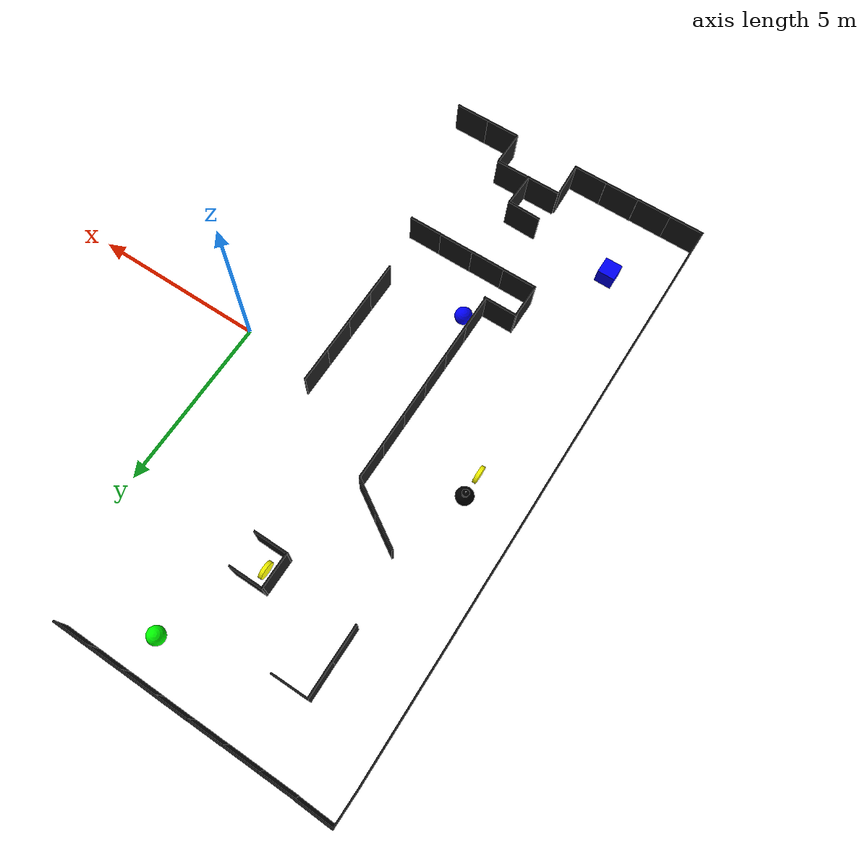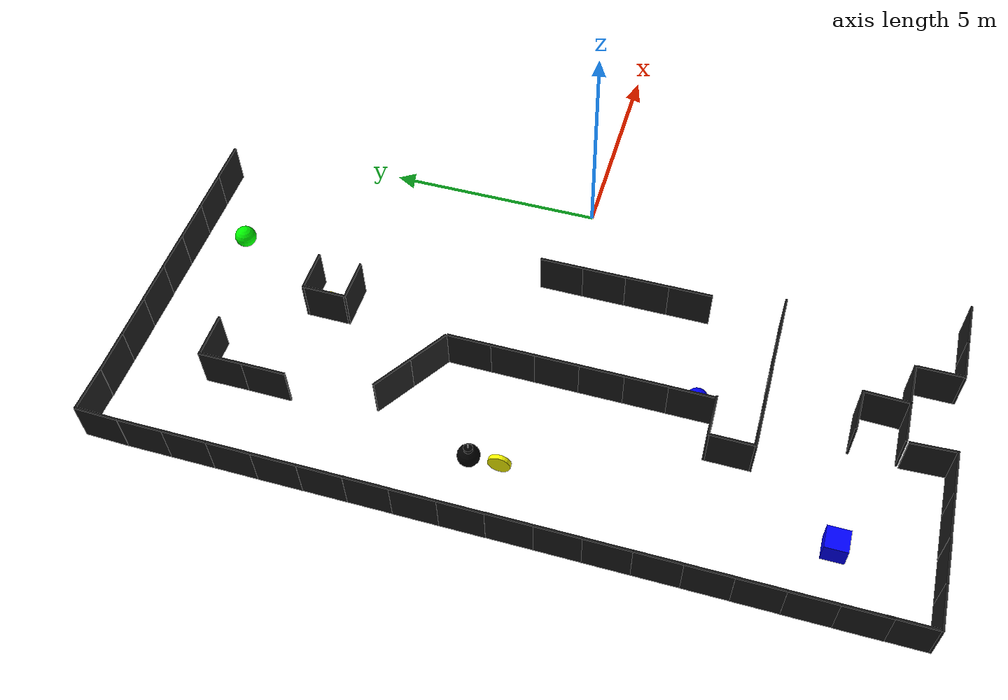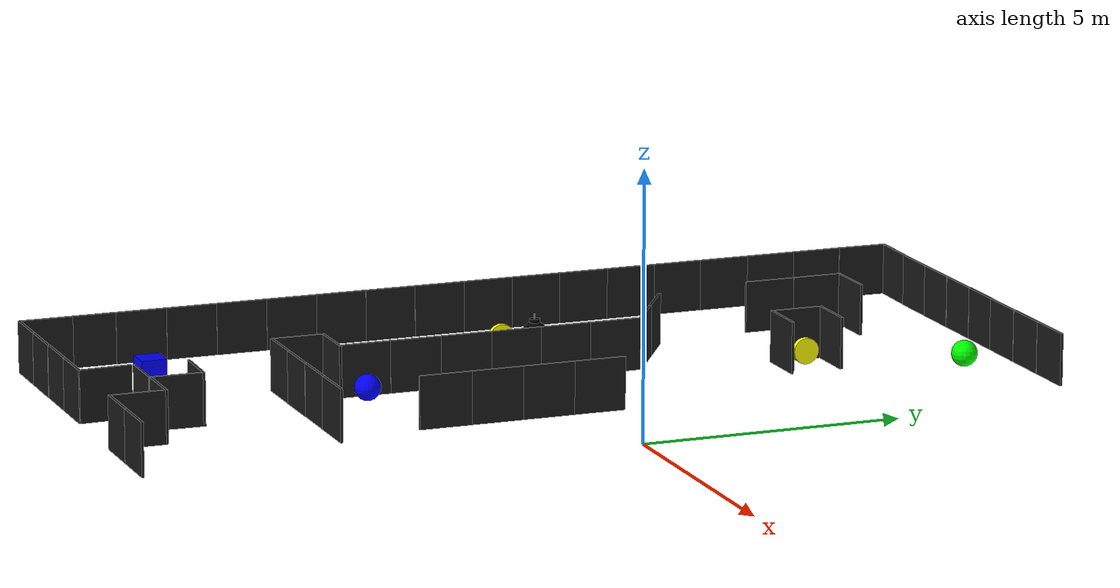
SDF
<sdf version="1.6">
 <world name="default">
  <model name="cube_blue">
   <static>1</static>
   <link name="chassis">
    <pose>0 0 0.25 0 -0 0</pose>
    <collision name="collision"><geometry><box><size>0.5 0.5 0.5</size></box></geometry></collision>
    <visual name="visual">
     <geometry><box><size>0.5 0.5 0.5</size></box></geometry>
     <material>
      <ambient>0 0 1 1</ambient>
      <diffuse>0 0 1 1</diffuse>
      <specular>0.1 0.1 0.1 1</specular>
      <emissive>0 0 0 0</emissive>
     </material>
    </visual>
   </link>
   <pose>-7.32238 -6.88227 0 0 -0 0</pose>
  </model>
  <model name="sphere_blue">
   <static>1</static>
   <link name="chassis">
    <pose>0 0 0.25 0 -0 0</pose>
    <collision name="collision"><geometry><sphere><radius>0.25</radius></sphere></geometry></collision>
    <visual name="visual">
     <geometry><sphere><radius>0.25</radius></sphere></geometry>
     <material>
      <ambient>0 0 1 1</ambient>
      <diffuse>0 0 1 1</diffuse>
      <specular>0.1 0.1 0.1 1</specular>
      <emissive>0 0 0 0</emissive>
     </material>
    </visual>
   </link>
   <pose>-4.67163 -3.53999 0 0 -0 0</pose>
  </model>
  <model name="sphere_green">
   <static>1</static>
   <link name="chassis">
    <pose>0 0 0.25 0 -0 0</pose>
    <collision name="collision"><geometry><sphere><radius>0.25</radius></sphere></geometry></collision>
    <visual name="visual">
     <geometry><sphere><radius>0.25</radius></sphere></geometry>
     <material>
      <ambient>0 1 0 1</ambient>
      <diffuse>0 1 0 1</diffuse>
      <specular>0.1 0.1 0.1 1</specular>
      <emissive>0 0 0 0</emissive>
     </material>
    </visual>
   </link>
   <pose>-3.05169 7.76717 0 0 -0 0</pose>
  </model>
  <model name="barrier_1">
   <static>1</static>
   <link name="chassis">
    <pose>0 0 0.5 0 -0 0</pose>
    <collision name="collision"><geometry><box><size>1 0.05 1</size></box></geometry></collision>
    <visual name="visual">
     <geometry><box><size>1 0.05 1</size></box></geometry>
     <material>
      <ambient>0.1 0.1 0.1 1</ambient>
      <diffuse>0.1 0.1 0.1 1</diffuse>
      <specular>0.1 0.1 0.1 1</specular>
      <emissive>0 0 0 0</emissive>
     </material>
    </visual>
   </link>
   <pose>-4.49325 -4.95734 0 0 -0 0</pose>
  </model>
  <model name="coin">
   <static>1</static>
   <link name="chassis">
    <pose>0 0 0.25 0 -0 0</pose>
    <visual name="visual">
     <pose>0 0 0 0 1.57 0</pose>
     <geometry><cylinder><radius>0.25</radius><length>0.1</length></cylinder></geometry>
     <material>
      <ambient>1 1 0 1</ambient>
      <diffuse>1 1 0 1</diffuse>
      <specular>0.1 0.1 0.1 1</specular>
      <emissive>0 0 0 0</emissive>
     </material>
    </visual>
   </link>
   <pose>-4.29923 5.05802 0 0 -0 0</pose>
  </model>
  <model name="bomb">
   <static>1</static>
   <link name="chassis">
    <pose>0 0 0.25 0 -0 0</pose>
    <visual name="visual">
     <pose>0 0 0.2 0 -0 0</pose>
     <geometry><cylinder><radius>0.1</radius><length>0.2</length></cylinder></geometry>
     <material>
      <ambient>0 0 0 1</ambient>
      <diffuse>0 0 0 1</diffuse>
      <specular>0.1 0.1 0.1 1</specular>
      <emissive>0 0 0 0</emissive>
     </material>
    </visual>
    <visual name="visual2">
     <geometry><sphere><radius>0.25</radius></sphere></geometry>
     <material>
      <ambient>0 0 0 1</ambient>
      <diffuse>0 0 0 1</diffuse>
      <specular>0.1 0.1 0.1 1</specular>
      <emissive>0 0 0 0</emissive>
     </material>
    </visual>
    <visual name="visual3">
     <pose>0 0 0.3 0 -0 0</pose>
     <geometry><cylinder><radius>0.01</radius><length>0.2</length></cylinder></geometry>
     <material>
      <ambient>1 1 1 1</ambient>
      <diffuse>1 1 1 1</diffuse>
      <specular>0.1 0.1 0.1 1</specular>
      <emissive>0 0 0 0</emissive>
     </material>
    </visual>
   </link>
   <pose>-7.36891 0.771698 0 0 -0 0</pose>
  </model>
  <model name="barrier_1_0">
   <static>1</static>
   <link name="chassis">
    <pose>0 0 0.5 0 -0 0</pose>
    <collision name="collision"><geometry><box><size>1 0.05 1</size></box></geometry></collision>
    <visual name="visual">
     <geometry><box><size>1 0.05 1</size></box></geometry>
     <material>
      <ambient>0.1 0.1 0.1 1</ambient>
      <diffuse>0.1 0.1 0.1 1</diffuse>
      <specular>0.1 0.1 0.1 1</specular>
      <emissive>0 0 0 0</emissive>
     </material>
    </visual>
   </link>
   <pose>-8.94669 -7.56184 0 0 0 -1.56862</pose>
  </model>
  <model name="barrier_2_0">
   <static>1</static>
   <link name="chassis">
    <pose>0 0 0.5 0 -0 0</pose>
    <collision name="collision"><geometry><box><size>1 0.05 1</size></box></geometry></collision>
    <visual name="visual">
     <geometry><box><size>1 0.05 1</size></box></geometry>
     <material>
      <ambient>0.1 0.1 0.1 1</ambient>
      <diffuse>0.1 0.1 0.1 1</diffuse>
      <specular>0.1 0.1 0.1 1</specular>
      <emissive>0 0 0 0</emissive>
     </material>
    </visual>
    <collision name="collision2">
     <pose>-0.475 0.525 0 0 -0 1.57</pose>
     <geometry><box><size>1 0.05 1</size></box></geometry>
    </collision>
    <visual name="visual2">
     <pose>-0.475 0.525 0 0 -0 1.57</pose>
     <geometry><box><size>1 0.05 1</size></box></geometry>
     <material>
      <ambient>0.1 0.1 0.1 1</ambient>
      <diffuse>0.1 0.1 0.1 1</diffuse>
      <specular>0.1 0.1 0.1 1</specular>
      <emissive>0 0 0 0</emissive>
     </material>
    </visual>
   </link>
   <pose>-8.96223 8.34033 0 0 0 -1.59066</pose>
  </model>
  <model name="barrier_1_0_clone">
   <static>1</static>
   <link name="chassis">
    <pose>0 0 0.5 0 -0 0</pose>
    <collision name="collision"><geometry><box><size>1 0.05 1</size></box></geometry></collision>
    <visual name="visual">
     <geometry><box><size>1 0.05 1</size></box></geometry>
     <material>
      <ambient>0.1 0.1 0.1 1</ambient>
      <diffuse>0.1 0.1 0.1 1</diffuse>
      <specular>0.1 0.1 0.1 1</specular>
      <emissive>0 0 0 0</emissive>
     </material>
    </visual>
   </link>
   <pose>-8.94675 -6.56146 0 0 0 -1.56862</pose>
  </model>
  <model name="barrier_1_0_clone_0">
   <static>1</static>
   <link name="chassis">
    <pose>0 0 0.5 0 -0 0</pose>
    <collision name="collision"><geometry><box><size>1 0.05 1</size></box></geometry></collision>
    <visual name="visual">
     <geometry><box><size>1 0.05 1</size></box></geometry>
     <material>
      <ambient>0.1 0.1 0.1 1</ambient>
      <diffuse>0.1 0.1 0.1 1</diffuse>
      <specular>0.1 0.1 0.1 1</specular>
      <emissive>0 0 0 0</emissive>
     </material>
    </visual>
   </link>
   <pose>-8.94468 -5.56949 0 0 0 -1.56862</pose>
  </model>
  <model name="barrier_1_0_clone_1">
   <static>1</static>
   <link name="chassis">
    <pose>0 0 0.5 0 -0 0</pose>
    <collision name="collision"><geometry><box><size>1 0.05 1</size></box></geometry></collision>
    <visual name="visual">
     <geometry><box><size>1 0.05 1</size></box></geometry>
     <material>
      <ambient>0.1 0.1 0.1 1</ambient>
      <diffuse>0.1 0.1 0.1 1</diffuse>
      <specular>0.1 0.1 0.1 1</specular>
      <emissive>0 0 0 0</emissive>
     </material>
    </visual>
   </link>
   <pose>-8.94412 -4.57946 0 0 0 -1.56862</pose>
  </model>
  <model name="barrier_1_0_clone_2">
   <static>1</static>
   <link name="chassis">
    <pose>0 0 0.5 0 -0 0</pose>
    <collision name="collision"><geometry><box><size>1 0.05 1</size></box></geometry></collision>
    <visual name="visual">
     <geometry><box><size>1 0.05 1</size></box></geometry>
     <material>
      <ambient>0.1 0.1 0.1 1</ambient>
      <diffuse>0.1 0.1 0.1 1</diffuse>
      <specular>0.1 0.1 0.1 1</specular>
      <emissive>0 0 0 0</emissive>
     </material>
    </visual>
   </link>
   <pose>-8.94437 -3.58389 0 0 0 -1.56862</pose>
  </model>
  <model name="barrier_1_0_clone_3">
   <static>1</static>
   <link name="chassis">
    <pose>0 0 0.5 0 -0 0</pose>
    <collision name="collision"><geometry><box><size>1 0.05 1</size></box></geometry></collision>
    <visual name="visual">
     <geometry><box><size>1 0.05 1</size></box></geometry>
     <material>
      <ambient>0.1 0.1 0.1 1</ambient>
      <diffuse>0.1 0.1 0.1 1</diffuse>
      <specular>0.1 0.1 0.1 1</specular>
      <emissive>0 0 0 0</emissive>
     </material>
    </visual>
   </link>
   <pose>-8.94691 -2.58345 0 0 0 -1.56862</pose>
  </model>
  <model name="barrier_1_0_clone_4">
   <static>1</static>
   <link name="chassis">
    <pose>0 0 0.5 0 -0 0</pose>
    <collision name="collision"><geometry><box><size>1 0.05 1</size></box></geometry></collision>
    <visual name="visual">
     <geometry><box><size>1 0.05 1</size></box></geometry>
     <material>
      <ambient>0.1 0.1 0.1 1</ambient>
      <diffuse>0.1 0.1 0.1 1</diffuse>
      <specular>0.1 0.1 0.1 1</specular>
      <emissive>0 0 0 0</emissive>
     </material>
    </visual>
   </link>
   <pose>-8.94686 -1.591 0 0 0 -1.56862</pose>
  </model>
  <model name="barrier_1_0_clone_5">
   <static>1</static>
   <link name="chassis">
    <pose>0 0 0.5 0 -0 0</pose>
    <collision name="collision"><geometry><box><size>1 0.05 1</size></box></geometry></collision>
    <visual name="visual">
     <geometry><box><size>1 0.05 1</size></box></geometry>
     <material>
      <ambient>0.1 0.1 0.1 1</ambient>
      <diffuse>0.1 0.1 0.1 1</diffuse>
      <specular>0.1 0.1 0.1 1</specular>
      <emissive>0 0 0 0</emissive>
     </material>
    </visual>
   </link>
   <pose>-8.94828 -0.589978 0 0 0 -1.56862</pose>
  </model>
  <model name="barrier_1_0_clone_6">
   <static>1</static>
   <link name="chassis">
    <pose>0 0 0.5 0 -0 0</pose>
    <collision name="collision"><geometry><box><size>1 0.05 1</size></box></geometry></collision>
    <visual name="visual">
     <geometry><box><size>1 0.05 1</size></box></geometry>
     <material>
      <ambient>0.1 0.1 0.1 1</ambient>
      <diffuse>0.1 0.1 0.1 1</diffuse>
      <specular>0.1 0.1 0.1 1</specular>
      <emissive>0 0 0 0</emissive>
     </material>
    </visual>
   </link>
   <pose>-8.95339 0.409164 0 0 0 -1.56862</pose>
  </model>
  <model name="barrier_1_0_clone_7">
   <static>1</static>
   <link name="chassis">
    <pose>0 0 0.5 0 -0 0</pose>
    <collision name="collision"><geometry><box><size>1 0.05 1</size></box></geometry></collision>
    <visual name="visual">
     <geometry><box><size>1 0.05 1</size></box></geometry>
     <material>
      <ambient>0.1 0.1 0.1 1</ambient>
      <diffuse>0.1 0.1 0.1 1</diffuse>
      <specular>0.1 0.1 0.1 1</specular>
      <emissive>0 0 0 0</emissive>
     </material>
    </visual>
   </link>
   <pose>-8.95581 1.39827 0 0 0 -1.56862</pose>
  </model>
  <model name="barrier_1_0_clone_8">
   <static>1</static>
   <link name="chassis">
    <pose>0 0 0.5 0 -0 0</pose>
    <collision name="collision"><geometry><box><size>1 0.05 1</size></box></geometry></collision>
    <visual name="visual">
     <geometry><box><size>1 0.05 1</size></box></geometry>
     <material>
      <ambient>0.1 0.1 0.1 1</ambient>
      <diffuse>0.1 0.1 0.1 1</diffuse>
      <specular>0.1 0.1 0.1 1</specular>
      <emissive>0 0 0 0</emissive>
     </material>
    </visual>
   </link>
   <pose>-8.95548 2.3872 0 0 0 -1.56862</pose>
  </model>
  <model name="barrier_1_0_clone_9">
   <static>1</static>
   <link name="chassis">
    <pose>0 0 0.5 0 -0 0</pose>
    <collision name="collision"><geometry><box><size>1 0.05 1</size></box></geometry></collision>
    <visual name="visual">
     <geometry><box><size>1 0.05 1</size></box></geometry>
     <material>
      <ambient>0.1 0.1 0.1 1</ambient>
      <diffuse>0.1 0.1 0.1 1</diffuse>
      <specular>0.1 0.1 0.1 1</specular>
      <emissive>0 0 0 0</emissive>
     </material>
    </visual>
   </link>
   <pose>-8.95928 3.38028 0 0 0 -1.56862</pose>
  </model>
  <model name="barrier_1_0_clone_10">
   <static>1</static>
   <link name="chassis">
    <pose>0 0 0.5 0 -0 0</pose>
    <collision name="collision"><geometry><box><size>1 0.05 1</size></box></geometry></collision>
    <visual name="visual">
     <geometry><box><size>1 0.05 1</size></box></geometry>
     <material>
      <ambient>0.1 0.1 0.1 1</ambient>
      <diffuse>0.1 0.1 0.1 1</diffuse>
      <specular>0.1 0.1 0.1 1</specular>
      <emissive>0 0 0 0</emissive>
     </material>
    </visual>
   </link>
   <pose>-8.96389 4.36691 0 0 0 -1.56862</pose>
  </model>
  <model name="barrier_1_0_clone_11">
   <static>1</static>
   <link name="chassis">
    <pose>0 0 0.5 0 -0 0</pose>
    <collision name="collision"><geometry><box><size>1 0.05 1</size></box></geometry></collision>
    <visual name="visual">
     <geometry><box><size>1 0.05 1</size></box></geometry>
     <material>
      <ambient>0.1 0.1 0.1 1</ambient>
      <diffuse>0.1 0.1 0.1 1</diffuse>
      <specular>0.1 0.1 0.1 1</specular>
      <emissive>0 0 0 0</emissive>
     </material>
    </visual>
   </link>
   <pose>-8.96484 5.35736 0 0 0 -1.56862</pose>
  </model>
  <model name="barrier_1_0_clone_12">
   <static>1</static>
   <link name="chassis">
    <pose>0 0 0.5 0 -0 0</pose>
    <collision name="collision"><geometry><box><size>1 0.05 1</size></box></geometry></collision>
    <visual name="visual">
     <geometry><box><size>1 0.05 1</size></box></geometry>
     <material>
      <ambient>0.1 0.1 0.1 1</ambient>
      <diffuse>0.1 0.1 0.1 1</diffuse>
      <specular>0.1 0.1 0.1 1</specular>
      <emissive>0 0 0 0</emissive>
     </material>
    </visual>
   </link>
   <pose>-8.96737 6.34739 0 0 0 -1.56862</pose>
  </model>
  <model name="barrier_1_0_clone_13">
   <static>1</static>
   <link name="chassis">
    <pose>0 0 0.5 0 -0 0</pose>
    <collision name="collision"><geometry><box><size>1 0.05 1</size></box></geometry></collision>
    <visual name="visual">
     <geometry><box><size>1 0.05 1</size></box></geometry>
     <material>
      <ambient>0.1 0.1 0.1 1</ambient>
      <diffuse>0.1 0.1 0.1 1</diffuse>
      <specular>0.1 0.1 0.1 1</specular>
      <emissive>0 0 0 0</emissive>
     </material>
    </visual>
   </link>
   <pose>-8.96983 7.33788 0 0 0 -1.56862</pose>
  </model>
  <model name="barrier_1_18">
   <static>1</static>
   <link name="chassis">
    <pose>0 0 0.5 0 -0 0</pose>
    <collision name="collision"><geometry><box><size>1 0.05 1</size></box></geometry></collision>
    <visual name="visual">
     <geometry><box><size>1 0.05 1</size></box></geometry>
     <material>
      <ambient>0.1 0.1 0.1 1</ambient>
      <diffuse>0.1 0.1 0.1 1</diffuse>
      <specular>0.1 0.1 0.1 1</specular>
      <emissive>0 0 0 0</emissive>
     </material>
    </visual>
   </link>
   <pose>-7.43182 8.78835 0 0 -0 0</pose>
  </model>
  <model name="barrier_1_18_clone">
   <static>1</static>
   <link name="chassis">
    <pose>0 0 0.5 0 -0 0</pose>
    <collision name="collision"><geometry><box><size>1 0.05 1</size></box></geometry></collision>
    <visual name="visual">
     <geometry><box><size>1 0.05 1</size></box></geometry>
     <material>
      <ambient>0.1 0.1 0.1 1</ambient>
      <diffuse>0.1 0.1 0.1 1</diffuse>
      <specular>0.1 0.1 0.1 1</specular>
      <emissive>0 0 0 0</emissive>
     </material>
    </visual>
   </link>
   <pose>-6.45226 8.78729 0 0 -0 0</pose>
  </model>
  <model name="barrier_1_18_clone_0">
   <static>1</static>
   <link name="chassis">
    <pose>0 0 0.5 0 -0 0</pose>
    <collision name="collision"><geometry><box><size>1 0.05 1</size></box></geometry></collision>
    <visual name="visual">
     <geometry><box><size>1 0.05 1</size></box></geometry>
     <material>
      <ambient>0.1 0.1 0.1 1</ambient>
      <diffuse>0.1 0.1 0.1 1</diffuse>
      <specular>0.1 0.1 0.1 1</specular>
      <emissive>0 0 0 0</emissive>
     </material>
    </visual>
   </link>
   <pose>-5.46816 8.79079 0 0 -0 0</pose>
  </model>
  <model name="barrier_1_18_clone_1">
   <static>1</static>
   <link name="chassis">
    <pose>0 0 0.5 0 -0 0</pose>
    <collision name="collision"><geometry><box><size>1 0.05 1</size></box></geometry></collision>
    <visual name="visual">
     <geometry><box><size>1 0.05 1</size></box></geometry>
     <material>
      <ambient>0.1 0.1 0.1 1</ambient>
      <diffuse>0.1 0.1 0.1 1</diffuse>
      <specular>0.1 0.1 0.1 1</specular>
      <emissive>0 0 0 0</emissive>
     </material>
    </visual>
   </link>
   <pose>-4.50737 8.79381 0 0 -0 0</pose>
  </model>
  <model name="barrier_1_18_clone_2">
   <static>1</static>
   <link name="chassis">
    <pose>0 0 0.5 0 -0 0</pose>
    <collision name="collision"><geometry><box><size>1 0.05 1</size></box></geometry></collision>
    <visual name="visual">
     <geometry><box><size>1 0.05 1</size></box></geometry>
     <material>
      <ambient>0.1 0.1 0.1 1</ambient>
      <diffuse>0.1 0.1 0.1 1</diffuse>
      <specular>0.1 0.1 0.1 1</specular>
      <emissive>0 0 0 0</emissive>
     </material>
    </visual>
   </link>
   <pose>-3.53062 8.79201 0 0 -0 0</pose>
  </model>
  <model name="barrier_1_18_clone_3">
   <static>1</static>
   <link name="chassis">
    <pose>0 0 0.5 0 -0 0</pose>
    <collision name="collision"><geometry><box><size>1 0.05 1</size></box></geometry></collision>
    <visual name="visual">
     <geometry><box><size>1 0.05 1</size></box></geometry>
     <material>
      <ambient>0.1 0.1 0.1 1</ambient>
      <diffuse>0.1 0.1 0.1 1</diffuse>
      <specular>0.1 0.1 0.1 1</specular>
      <emissive>0 0 0 0</emissive>
     </material>
    </visual>
   </link>
   <pose>-2.54563 8.79444 0 0 -0 0</pose>
  </model>
  <model name="barrier_1_18_clone_4">
   <static>1</static>
   <link name="chassis">
    <pose>0 0 0.5 0 -0 0</pose>
    <collision name="collision"><geometry><box><size>1 0.05 1</size></box></geometry></collision>
    <visual name="visual">
     <geometry><box><size>1 0.05 1</size></box></geometry>
     <material>
      <ambient>0.1 0.1 0.1 1</ambient>
      <diffuse>0.1 0.1 0.1 1</diffuse>
      <specular>0.1 0.1 0.1 1</specular>
      <emissive>0 0 0 0</emissive>
     </material>
    </visual>
   </link>
   <pose>-1.55694 8.79631 0 0 -0 0</pose>
  </model>
  <model name="barrier_1_21_clone_7">
   <static>1</static>
   <link name="chassis">
    <pose>0 0 0.5 0 -0 0</pose>
    <collision name="collision"><geometry><box><size>1 0.05 1</size></box></geometry></collision>
    <visual name="visual">
     <geometry><box><size>1 0.05 1</size></box></geometry>
     <material>
      <ambient>0.1 0.1 0.1 1</ambient>
      <diffuse>0.1 0.1 0.1 1</diffuse>
      <specular>0.1 0.1 0.1 1</specular>
      <emissive>0 0 0 0</emissive>
     </material>
    </visual>
   </link>
   <pose>-1.59182 -8.92491 0 0 -0 0</pose>
  </model>
  <model name="barrier_1_21_clone_8">
   <static>1</static>
   <link name="chassis">
    <pose>0 0 0.5 0 -0 0</pose>
    <collision name="collision"><geometry><box><size>1 0.05 1</size></box></geometry></collision>
    <visual name="visual">
     <geometry><box><size>1 0.05 1</size></box></geometry>
     <material>
      <ambient>0.1 0.1 0.1 1</ambient>
      <diffuse>0.1 0.1 0.1 1</diffuse>
      <specular>0.1 0.1 0.1 1</specular>
      <emissive>0 0 0 0</emissive>
     </material>
    </visual>
   </link>
   <pose>-3.55058 -7.87618 0 0 -0 0</pose>
  </model>
  <model name="barrier_1_21_clone_9">
   <static>1</static>
   <link name="chassis">
    <pose>0 0 0.5 0 -0 0</pose>
    <collision name="collision"><geometry><box><size>1 0.05 1</size></box></geometry></collision>
    <visual name="visual">
     <geometry><box><size>1 0.05 1</size></box></geometry>
     <material>
      <ambient>0.1 0.1 0.1 1</ambient>
      <diffuse>0.1 0.1 0.1 1</diffuse>
      <specular>0.1 0.1 0.1 1</specular>
      <emissive>0 0 0 0</emissive>
     </material>
    </visual>
   </link>
   <pose>-4.51155 -7.88119 0 0 -0 0</pose>
  </model>
  <model name="barrier_1_21_clone_10">
   <static>1</static>
   <link name="chassis">
    <pose>0 0 0.5 0 -0 0</pose>
    <collision name="collision"><geometry><box><size>1 0.05 1</size></box></geometry></collision>
    <visual name="visual">
     <geometry><box><size>1 0.05 1</size></box></geometry>
     <material>
      <ambient>0.1 0.1 0.1 1</ambient>
      <diffuse>0.1 0.1 0.1 1</diffuse>
      <specular>0.1 0.1 0.1 1</specular>
      <emissive>0 0 0 0</emissive>
     </material>
    </visual>
   </link>
   <pose>-5.00714 -8.42807 0 0 -0 1.61395</pose>
  </model>
  <model name="barrier_1_21_clone_11">
   <static>1</static>
   <link name="chassis">
    <pose>0 0 0.5 0 -0 0</pose>
    <collision name="collision"><geometry><box><size>1 0.05 1</size></box></geometry></collision>
    <visual name="visual">
     <geometry><box><size>1 0.05 1</size></box></geometry>
     <material>
      <ambient>0.1 0.1 0.1 1</ambient>
      <diffuse>0.1 0.1 0.1 1</diffuse>
      <specular>0.1 0.1 0.1 1</specular>
      <emissive>0 0 0 0</emissive>
     </material>
    </visual>
   </link>
   <pose>-5.46256 -8.9219 0 0 -0 0</pose>
  </model>
  <model name="barrier_1_21_clone_12">
   <static>1</static>
   <link name="chassis">
    <pose>0 0 0.5 0 -0 0</pose>
    <collision name="collision"><geometry><box><size>1 0.05 1</size></box></geometry></collision>
    <visual name="visual">
     <geometry><box><size>1 0.05 1</size></box></geometry>
     <material>
      <ambient>0.1 0.1 0.1 1</ambient>
      <diffuse>0.1 0.1 0.1 1</diffuse>
      <specular>0.1 0.1 0.1 1</specular>
      <emissive>0 0 0 0</emissive>
     </material>
    </visual>
   </link>
   <pose>-6.46593 -8.92117 0 0 -0 0</pose>
  </model>
  <model name="barrier_1_21_clone_13">
   <static>1</static>
   <link name="chassis">
    <pose>0 0 0.5 0 -0 0</pose>
    <collision name="collision"><geometry><box><size>1 0.05 1</size></box></geometry></collision>
    <visual name="visual">
     <geometry><box><size>1 0.05 1</size></box></geometry>
     <material>
      <ambient>0.1 0.1 0.1 1</ambient>
      <diffuse>0.1 0.1 0.1 1</diffuse>
      <specular>0.1 0.1 0.1 1</specular>
      <emissive>0 0 0 0</emissive>
     </material>
    </visual>
   </link>
   <pose>-7.46706 -8.92746 0 0 -0 0</pose>
  </model>
  <model name="barrier_2_6">
   <static>1</static>
   <link name="chassis">
    <pose>0 0 0.5 0 -0 0</pose>
    <collision name="collision"><geometry><box><size>1 0.05 1</size></box></geometry></collision>
    <visual name="visual">
     <geometry><box><size>1 0.05 1</size></box></geometry>
     <material>
      <ambient>0.1 0.1 0.1 1</ambient>
      <diffuse>0.1 0.1 0.1 1</diffuse>
      <specular>0.1 0.1 0.1 1</specular>
      <emissive>0 0 0 0</emissive>
     </material>
    </visual>
    <collision name="collision2">
     <pose>-0.475 0.525 0 0 -0 1.57</pose>
     <geometry><box><size>1 0.05 1</size></box></geometry>
    </collision>
    <visual name="visual2">
     <pose>-0.475 0.525 0 0 -0 1.57</pose>
     <geometry><box><size>1 0.05 1</size></box></geometry>
     <material>
      <ambient>0.1 0.1 0.1 1</ambient>
      <diffuse>0.1 0.1 0.1 1</diffuse>
      <specular>0.1 0.1 0.1 1</specular>
      <emissive>0 0 0 0</emissive>
     </material>
    </visual>
   </link>
   <pose>-8.46687 -8.92868 0 0 -0 0</pose>
  </model>
  <model name="barrier_2_7">
   <static>1</static>
   <link name="chassis">
    <pose>0 0 0.5 0 -0 0</pose>
    <collision name="collision"><geometry><box><size>1 0.05 1</size></box></geometry></collision>
    <visual name="visual">
     <geometry><box><size>1 0.05 1</size></box></geometry>
     <material>
      <ambient>0.1 0.1 0.1 1</ambient>
      <diffuse>0.1 0.1 0.1 1</diffuse>
      <specular>0.1 0.1 0.1 1</specular>
      <emissive>0 0 0 0</emissive>
     </material>
    </visual>
    <collision name="collision2">
     <pose>-0.475 0.525 0 0 -0 1.57</pose>
     <geometry><box><size>1 0.05 1</size></box></geometry>
    </collision>
    <visual name="visual2">
     <pose>-0.475 0.525 0 0 -0 1.57</pose>
     <geometry><box><size>1 0.05 1</size></box></geometry>
     <material>
      <ambient>0.1 0.1 0.1 1</ambient>
      <diffuse>0.1 0.1 0.1 1</diffuse>
      <specular>0.1 0.1 0.1 1</specular>
      <emissive>0 0 0 0</emissive>
     </material>
    </visual>
   </link>
   <pose>-2.5925 -8.92494 0 0 -0 0</pose>
  </model>
  <model name="barrier_2_8">
   <static>1</static>
   <link name="chassis">
    <pose>0 0 0.5 0 -0 0</pose>
    <collision name="collision"><geometry><box><size>1 0.05 1</size></box></geometry></collision>
    <visual name="visual">
     <geometry><box><size>1 0.05 1</size></box></geometry>
     <material>
      <ambient>0.1 0.1 0.1 1</ambient>
      <diffuse>0.1 0.1 0.1 1</diffuse>
      <specular>0.1 0.1 0.1 1</specular>
      <emissive>0 0 0 0</emissive>
     </material>
    </visual>
    <collision name="collision2">
     <pose>-0.475 0.525 0 0 -0 1.57</pose>
     <geometry><box><size>1 0.05 1</size></box></geometry>
    </collision>
    <visual name="visual2">
     <pose>-0.475 0.525 0 0 -0 1.57</pose>
     <geometry><box><size>1 0.05 1</size></box></geometry>
     <material>
      <ambient>0.1 0.1 0.1 1</ambient>
      <diffuse>0.1 0.1 0.1 1</diffuse>
      <specular>0.1 0.1 0.1 1</specular>
      <emissive>0 0 0 0</emissive>
     </material>
    </visual>
   </link>
   <pose>-4.49582 -6.87089 0 0 -0 3.11565</pose>
  </model>
  <model name="barrier_3_0">
   <static>1</static>
   <link name="chassis">
    <pose>0 0 0.5 0 -0 0</pose>
    <collision name="collision"><geometry><box><size>1 0.05 1</size></box></geometry></collision>
    <visual name="visual">
     <geometry><box><size>1 0.05 1</size></box></geometry>
     <material>
      <ambient>0.1 0.1 0.1 1</ambient>
      <diffuse>0.1 0.1 0.1 1</diffuse>
      <specular>0.1 0.1 0.1 1</specular>
      <emissive>0 0 0 0</emissive>
     </material>
    </visual>
    <collision name="collision2">
     <pose>-0.475 0.525 0 0 -0 1.57</pose>
     <geometry><box><size>1 0.05 1</size></box></geometry>
    </collision>
    <visual name="visual2">
     <pose>-0.475 0.525 0 0 -0 1.57</pose>
     <geometry><box><size>1 0.05 1</size></box></geometry>
     <material>
      <ambient>0.1 0.1 0.1 1</ambient>
      <diffuse>0.1 0.1 0.1 1</diffuse>
      <specular>0.1 0.1 0.1 1</specular>
      <emissive>0 0 0 0</emissive>
     </material>
    </visual>
    <collision name="collision3">
     <pose>0 1 0 0 -0 0</pose>
     <geometry><box><size>1 0.05 1</size></box></geometry>
    </collision>
    <visual name="visual3">
     <pose>0 1 0 0 -0 0</pose>
     <geometry><box><size>1 0.05 1</size></box></geometry>
     <material>
      <ambient>0.1 0.1 0.1 1</ambient>
      <diffuse>0.1 0.1 0.1 1</diffuse>
      <specular>0.1 0.1 0.1 1</specular>
      <emissive>0 0 0 0</emissive>
     </material>
    </visual>
   </link>
   <pose>-5.48365 -4.95486 0 0 -0 0</pose>
  </model>
  <model name="barrier_1_22">
   <static>1</static>
   <link name="chassis">
    <pose>0 0 0.5 0 -0 0</pose>
    <collision name="collision"><geometry><box><size>1 0.05 1</size></box></geometry></collision>
    <visual name="visual">
     <geometry><box><size>1 0.05 1</size></box></geometry>
     <material>
      <ambient>0.1 0.1 0.1 1</ambient>
      <diffuse>0.1 0.1 0.1 1</diffuse>
      <specular>0.1 0.1 0.1 1</specular>
      <emissive>0 0 0 0</emissive>
     </material>
    </visual>
   </link>
   <pose>-3.49746 -4.95231 0 0 -0 0</pose>
  </model>
  <model name="barrier_1_23">
   <static>1</static>
   <link name="chassis">
    <pose>0 0 0.5 0 -0 0</pose>
    <collision name="collision"><geometry><box><size>1 0.05 1</size></box></geometry></collision>
    <visual name="visual">
     <geometry><box><size>1 0.05 1</size></box></geometry>
     <material>
      <ambient>0.1 0.1 0.1 1</ambient>
      <diffuse>0.1 0.1 0.1 1</diffuse>
      <specular>0.1 0.1 0.1 1</specular>
      <emissive>0 0 0 0</emissive>
     </material>
    </visual>
   </link>
   <pose>-2.52236 -4.95576 0 0 -0 0</pose>
  </model>
  <model name="barrier_1_24">
   <static>1</static>
   <link name="chassis">
    <pose>0 0 0.5 0 -0 0</pose>
    <collision name="collision"><geometry><box><size>1 0.05 1</size></box></geometry></collision>
    <visual name="visual">
     <geometry><box><size>1 0.05 1</size></box></geometry>
     <material>
      <ambient>0.1 0.1 0.1 1</ambient>
      <diffuse>0.1 0.1 0.1 1</diffuse>
      <specular>0.1 0.1 0.1 1</specular>
      <emissive>0 0 0 0</emissive>
     </material>
    </visual>
   </link>
   <pose>-5.03246 -3.43263 0 0 -0 1.57028</pose>
  </model>
  <model name="barrier_1_24_clone">
   <static>1</static>
   <link name="chassis">
    <pose>0 0 0.5 0 -0 0</pose>
    <collision name="collision"><geometry><box><size>1 0.05 1</size></box></geometry></collision>
    <visual name="visual">
     <geometry><box><size>1 0.05 1</size></box></geometry>
     <material>
      <ambient>0.1 0.1 0.1 1</ambient>
      <diffuse>0.1 0.1 0.1 1</diffuse>
      <specular>0.1 0.1 0.1 1</specular>
      <emissive>0 0 0 0</emissive>
     </material>
    </visual>
   </link>
   <pose>-5.03004 -2.47532 0 0 -0 1.57028</pose>
  </model>
  <model name="barrier_1_24_clone_0">
   <static>1</static>
   <link name="chassis">
    <pose>0 0 0.5 0 -0 0</pose>
    <collision name="collision"><geometry><box><size>1 0.05 1</size></box></geometry></collision>
    <visual name="visual">
     <geometry><box><size>1 0.05 1</size></box></geometry>
     <material>
      <ambient>0.1 0.1 0.1 1</ambient>
      <diffuse>0.1 0.1 0.1 1</diffuse>
      <specular>0.1 0.1 0.1 1</specular>
      <emissive>0 0 0 0</emissive>
     </material>
    </visual>
   </link>
   <pose>-5.0291 -1.48247 0 0 -0 1.57028</pose>
  </model>
  <model name="barrier_1_24_clone_1">
   <static>1</static>
   <link name="chassis">
    <pose>0 0 0.5 0 -0 0</pose>
    <collision name="collision"><geometry><box><size>1 0.05 1</size></box></geometry></collision>
    <visual name="visual">
     <geometry><box><size>1 0.05 1</size></box></geometry>
     <material>
      <ambient>0.1 0.1 0.1 1</ambient>
      <diffuse>0.1 0.1 0.1 1</diffuse>
      <specular>0.1 0.1 0.1 1</specular>
      <emissive>0 0 0 0</emissive>
     </material>
    </visual>
   </link>
   <pose>-5.02805 -0.486557 0 0 -0 1.57028</pose>
  </model>
  <model name="barrier_1_24_clone_2">
   <static>1</static>
   <link name="chassis">
    <pose>0 0 0.5 0 -0 0</pose>
    <collision name="collision"><geometry><box><size>1 0.05 1</size></box></geometry></collision>
    <visual name="visual">
     <geometry><box><size>1 0.05 1</size></box></geometry>
     <material>
      <ambient>0.1 0.1 0.1 1</ambient>
      <diffuse>0.1 0.1 0.1 1</diffuse>
      <specular>0.1 0.1 0.1 1</specular>
      <emissive>0 0 0 0</emissive>
     </material>
    </visual>
   </link>
   <pose>-5.02637 0.492407 0 0 -0 1.57028</pose>
  </model>
  <model name="barrier_1_24_clone_3">
   <static>1</static>
   <link name="chassis">
    <pose>0 0 0.5 0 -0 0</pose>
    <collision name="collision"><geometry><box><size>1 0.05 1</size></box></geometry></collision>
    <visual name="visual">
     <geometry><box><size>1 0.05 1</size></box></geometry>
     <material>
      <ambient>0.1 0.1 0.1 1</ambient>
      <diffuse>0.1 0.1 0.1 1</diffuse>
      <specular>0.1 0.1 0.1 1</specular>
      <emissive>0 0 0 0</emissive>
     </material>
    </visual>
   </link>
   <pose>-2.38458 -2.85956 0 0 -0 1.57028</pose>
  </model>
  <model name="barrier_1_24_clone_4">
   <static>1</static>
   <link name="chassis">
    <pose>0 0 0.5 0 -0 0</pose>
    <collision name="collision"><geometry><box><size>1 0.05 1</size></box></geometry></collision>
    <visual name="visual">
     <geometry><box><size>1 0.05 1</size></box></geometry>
     <material>
      <ambient>0.1 0.1 0.1 1</ambient>
      <diffuse>0.1 0.1 0.1 1</diffuse>
      <specular>0.1 0.1 0.1 1</specular>
      <emissive>0 0 0 0</emissive>
     </material>
    </visual>
   </link>
   <pose>-2.38627 -1.86824 0 0 -0 1.57028</pose>
  </model>
  <model name="barrier_1_24_clone_5">
   <static>1</static>
   <link name="chassis">
    <pose>0 0 0.5 0 -0 0</pose>
    <collision name="collision"><geometry><box><size>1 0.05 1</size></box></geometry></collision>
    <visual name="visual">
     <geometry><box><size>1 0.05 1</size></box></geometry>
     <material>
      <ambient>0.1 0.1 0.1 1</ambient>
      <diffuse>0.1 0.1 0.1 1</diffuse>
      <specular>0.1 0.1 0.1 1</specular>
      <emissive>0 0 0 0</emissive>
     </material>
    </visual>
   </link>
   <pose>-2.38977 -0.872753 0 0 -0 1.57028</pose>
  </model>
  <model name="barrier_1_24_clone_6">
   <static>1</static>
   <link name="chassis">
    <pose>0 0 0.5 0 -0 0</pose>
    <collision name="collision"><geometry><box><size>1 0.05 1</size></box></geometry></collision>
    <visual name="visual">
     <geometry><box><size>1 0.05 1</size></box></geometry>
     <material>
      <ambient>0.1 0.1 0.1 1</ambient>
      <diffuse>0.1 0.1 0.1 1</diffuse>
      <specular>0.1 0.1 0.1 1</specular>
      <emissive>0 0 0 0</emissive>
     </material>
    </visual>
   </link>
   <pose>-2.38971 0.119235 0 0 -0 1.57028</pose>
  </model>
  <model name="barrier_1_24_clone_7">
   <static>1</static>
   <link name="chassis">
    <pose>0 0 0.5 0 -0 0</pose>
    <collision name="collision"><geometry><box><size>1 0.05 1</size></box></geometry></collision>
    <visual name="visual">
     <geometry><box><size>1 0.05 1</size></box></geometry>
     <material>
      <ambient>0.1 0.1 0.1 1</ambient>
      <diffuse>0.1 0.1 0.1 1</diffuse>
      <specular>0.1 0.1 0.1 1</specular>
      <emissive>0 0 0 0</emissive>
     </material>
    </visual>
   </link>
   <pose>-5.02492 1.48426 0 0 -0 1.57028</pose>
  </model>
  <model name="barrier_1_25">
   <static>1</static>
   <link name="chassis">
    <pose>0 0 0.5 0 -0 0</pose>
    <collision name="collision"><geometry><box><size>1 0.05 1</size></box></geometry></collision>
    <visual name="visual">
     <geometry><box><size>1 0.05 1</size></box></geometry>
     <material>
      <ambient>0.1 0.1 0.1 1</ambient>
      <diffuse>0.1 0.1 0.1 1</diffuse>
      <specular>0.1 0.1 0.1 1</specular>
      <emissive>0 0 0 0</emissive>
     </material>
    </visual>
   </link>
   <pose>-5.45113 2.27212 0 0 0 -0.565588</pose>
  </model>
  <model name="barrier_1_25_clone">
   <static>1</static>
   <link name="chassis">
    <pose>0 0 0.5 0 -0 0</pose>
    <collision name="collision"><geometry><box><size>1 0.05 1</size></box></geometry></collision>
    <visual name="visual">
     <geometry><box><size>1 0.05 1</size></box></geometry>
     <material>
      <ambient>0.1 0.1 0.1 1</ambient>
      <diffuse>0.1 0.1 0.1 1</diffuse>
      <specular>0.1 0.1 0.1 1</specular>
      <emissive>0 0 0 0</emissive>
     </material>
    </visual>
   </link>
   <pose>-6.28337 2.80067 0 0 0 -0.565588</pose>
  </model>
  <model name="barrier_1_24_clone_3_clone">
   <static>1</static>
   <link name="chassis">
    <pose>0 0 0.5 0 -0 0</pose>
    <collision name="collision"><geometry><box><size>1 0.05 1</size></box></geometry></collision>
    <visual name="visual">
     <geometry><box><size>1 0.05 1</size></box></geometry>
     <material>
      <ambient>0.1 0.1 0.1 1</ambient>
      <diffuse>0.1 0.1 0.1 1</diffuse>
      <specular>0.1 0.1 0.1 1</specular>
      <emissive>0 0 0 0</emissive>
     </material>
    </visual>
   </link>
   <pose>-6.95823 5.46917 0 0 -0 1.57028</pose>
  </model>
  <model name="barrier_3_1">
   <static>1</static>
   <link name="chassis">
    <pose>0 0 0.5 0 -0 0</pose>
    <collision name="collision"><geometry><box><size>1 0.05 1</size></box></geometry></collision>
    <visual name="visual">
     <geometry><box><size>1 0.05 1</size></box></geometry>
     <material>
      <ambient>0.1 0.1 0.1 1</ambient>
      <diffuse>0.1 0.1 0.1 1</diffuse>
      <specular>0.1 0.1 0.1 1</specular>
      <emissive>0 0 0 0</emissive>
     </material>
    </visual>
    <collision name="collision2">
     <pose>-0.475 0.525 0 0 -0 1.57</pose>
     <geometry><box><size>1 0.05 1</size></box></geometry>
    </collision>
    <visual name="visual2">
     <pose>-0.475 0.525 0 0 -0 1.57</pose>
     <geometry><box><size>1 0.05 1</size></box></geometry>
     <material>
      <ambient>0.1 0.1 0.1 1</ambient>
      <diffuse>0.1 0.1 0.1 1</diffuse>
      <specular>0.1 0.1 0.1 1</specular>
      <emissive>0 0 0 0</emissive>
     </material>
    </visual>
    <collision name="collision3">
     <pose>0 1 0 0 -0 0</pose>
     <geometry><box><size>1 0.05 1</size></box></geometry>
    </collision>
    <visual name="visual3">
     <pose>0 1 0 0 -0 0</pose>
     <geometry><box><size>1 0.05 1</size></box></geometry>
     <material>
      <ambient>0.1 0.1 0.1 1</ambient>
      <diffuse>0.1 0.1 0.1 1</diffuse>
      <specular>0.1 0.1 0.1 1</specular>
      <emissive>0 0 0 0</emissive>
     </material>
    </visual>
   </link>
   <pose>-4.16349 4.51591 0 0 -0 0</pose>
  </model>
  <model name="barrier_2_9">
   <static>1</static>
   <link name="chassis">
    <pose>0 0 0.5 0 -0 0</pose>
    <collision name="collision"><geometry><box><size>1 0.05 1</size></box></geometry></collision>
    <visual name="visual">
     <geometry><box><size>1 0.05 1</size></box></geometry>
     <material>
      <ambient>0.1 0.1 0.1 1</ambient>
      <diffuse>0.1 0.1 0.1 1</diffuse>
      <specular>0.1 0.1 0.1 1</specular>
      <emissive>0 0 0 0</emissive>
     </material>
    </visual>
    <collision name="collision2">
     <pose>-0.475 0.525 0 0 -0 1.57</pose>
     <geometry><box><size>1 0.05 1</size></box></geometry>
    </collision>
    <visual name="visual2">
     <pose>-0.475 0.525 0 0 -0 1.57</pose>
     <geometry><box><size>1 0.05 1</size></box></geometry>
     <material>
      <ambient>0.1 0.1 0.1 1</ambient>
      <diffuse>0.1 0.1 0.1 1</diffuse>
      <specular>0.1 0.1 0.1 1</specular>
      <emissive>0 0 0 0</emissive>
     </material>
    </visual>
   </link>
   <pose>-6.96104 6.47007 0 0 0 -1.56363</pose>
  </model>
  <model name="coin_0">
   <static>1</static>
   <link name="chassis">
    <pose>0 0 0.25 0 -0 0</pose>
    <visual name="visual">
     <pose>0 0 0 0 1.57 0</pose>
     <geometry><cylinder><radius>0.25</radius><length>0.1</length></cylinder></geometry>
     <material>
      <ambient>1 1 0 1</ambient>
      <diffuse>1 1 0 1</diffuse>
      <specular>0.1 0.1 0.1 1</specular>
      <emissive>0 0 0 0</emissive>
     </material>
    </visual>
   </link>
   <pose>-7.37299 0.095172 0 0 -0 0</pose>
  </model>
 </world>
</sdf>
